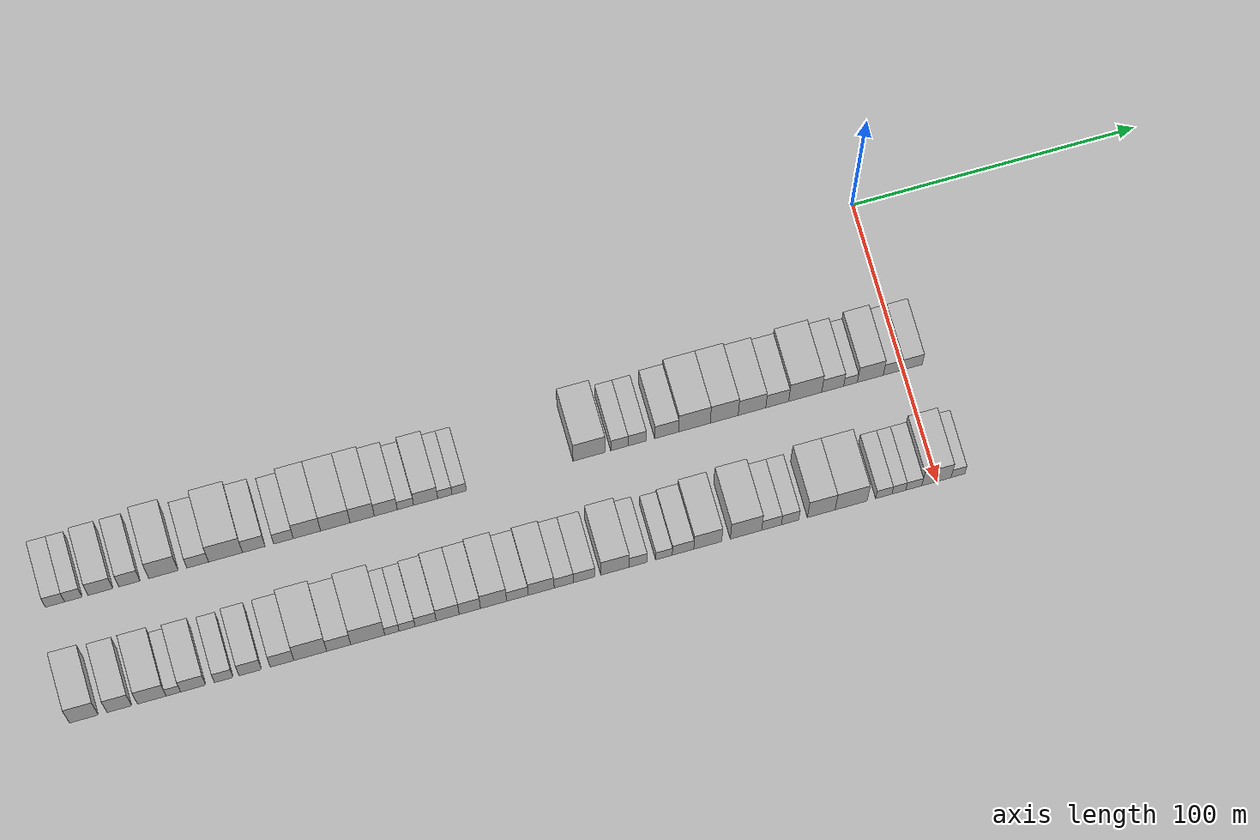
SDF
<sdf version="1.6">
 <world name="default">
  <include><name>ground_plane_1</name><uri>model://HANNAS_ground_plane</uri></include>
  <include>
   <name>ground_plane_2</name>
   <uri>model://HANNAS_ground_plane</uri>
   <pose>100 0 0  0 0 0</pose>
  </include>
  <model name="building_1">
   <static>1</static>
   <pose>50.0000 -294.6984 0 0.000000 0.000000 0.000000</pose>
   <link name="link">
    <pose>0 0 7.50 0 0 0</pose>
    <collision name="collision"><geometry><box><size>20.0000 6.6032 15.0000</size></box></geometry></collision>
    <visual name="visual">
     <cast_shadows>0</cast_shadows>
     <geometry><box><size>20.0000 6.6032 15.0000</size></box></geometry>
     <material>
      <script>
       <uri>model://HANNAS_wall/materials/scripts</uri>
       <uri>model://HANNAS_wall/materials/textures</uri>
       <name>vrc/HANNAS_wall</name>
      </script>
     </material>
    </visual>
   </link>
  </model>
  <model name="building_2">
   <static>1</static>
   <pose>50.0000 -288.3703 0 0.000000 0.000000 0.000000</pose>
   <link name="link">
    <pose>0 0 7.50 0 0 0</pose>
    <collision name="collision"><geometry><box><size>20.0000 6.0530 15.0000</size></box></geometry></collision>
    <visual name="visual">
     <cast_shadows>0</cast_shadows>
     <geometry><box><size>20.0000 6.0530 15.0000</size></box></geometry>
     <material>
      <script>
       <uri>model://HANNAS_wall/materials/scripts</uri>
       <uri>model://HANNAS_wall/materials/textures</uri>
       <name>vrc/HANNAS_wall</name>
      </script>
     </material>
    </visual>
   </link>
  </model>
  <model name="building_3">
   <static>1</static>
   <pose>50.0000 -279.0492 0 0.000000 0.000000 0.000000</pose>
   <link name="link">
    <pose>0 0 9.00 0 0 0</pose>
    <collision name="collision"><geometry><box><size>20.0000 8.5891 18.0000</size></box></geometry></collision>
    <visual name="visual">
     <cast_shadows>0</cast_shadows>
     <geometry><box><size>20.0000 8.5891 18.0000</size></box></geometry>
     <material>
      <script>
       <uri>model://HANNAS_wall/materials/scripts</uri>
       <uri>model://HANNAS_wall/materials/textures</uri>
       <name>vrc/HANNAS_wall</name>
      </script>
     </material>
    </visual>
   </link>
  </model>
  <model name="building_4">
   <static>1</static>
   <pose>50.0000 -269.0893 0 0.000000 0.000000 0.000000</pose>
   <link name="link">
    <pose>0 0 9.00 0 0 0</pose>
    <collision name="collision"><geometry><box><size>20.0000 7.3307 18.0000</size></box></geometry></collision>
    <visual name="visual">
     <cast_shadows>0</cast_shadows>
     <geometry><box><size>20.0000 7.3307 18.0000</size></box></geometry>
     <material>
      <script>
       <uri>model://HANNAS_wall/materials/scripts</uri>
       <uri>model://HANNAS_wall/materials/textures</uri>
       <name>vrc/HANNAS_wall</name>
      </script>
     </material>
    </visual>
   </link>
  </model>
  <model name="building_5">
   <static>1</static>
   <pose>50.0000 -257.3650 0 0.000000 0.000000 0.000000</pose>
   <link name="link">
    <pose>0 0 12.00 0 0 0</pose>
    <collision name="collision"><geometry><box><size>20.0000 10.1179 24.0000</size></box></geometry></collision>
    <visual name="visual">
     <cast_shadows>0</cast_shadows>
     <geometry><box><size>20.0000 10.1179 24.0000</size></box></geometry>
     <material>
      <script>
       <uri>model://HANNAS_wall/materials/scripts</uri>
       <uri>model://HANNAS_wall/materials/textures</uri>
       <name>vrc/HANNAS_wall</name>
      </script>
     </material>
    </visual>
   </link>
  </model>
  <model name="building_6">
   <static>1</static>
   <pose>50.0000 -245.5570 0 0.000000 0.000000 0.000000</pose>
   <link name="link">
    <pose>0 0 7.50 0 0 0</pose>
    <collision name="collision"><geometry><box><size>20.0000 7.4982 15.0000</size></box></geometry></collision>
    <visual name="visual">
     <cast_shadows>0</cast_shadows>
     <geometry><box><size>20.0000 7.4982 15.0000</size></box></geometry>
     <material>
      <script>
       <uri>model://HANNAS_wall/materials/scripts</uri>
       <uri>model://HANNAS_wall/materials/textures</uri>
       <name>vrc/HANNAS_wall</name>
      </script>
     </material>
    </visual>
   </link>
  </model>
  <model name="building_7">
   <static>1</static>
   <pose>50.0000 -235.9556 0 0.000000 0.000000 0.000000</pose>
   <link name="link">
    <pose>0 0 12.00 0 0 0</pose>
    <collision name="collision"><geometry><box><size>20.0000 11.7046 24.0000</size></box></geometry></collision>
    <visual name="visual">
     <cast_shadows>0</cast_shadows>
     <geometry><box><size>20.0000 11.7046 24.0000</size></box></geometry>
     <material>
      <script>
       <uri>model://HANNAS_wall/materials/scripts</uri>
       <uri>model://HANNAS_wall/materials/textures</uri>
       <name>vrc/HANNAS_wall</name>
      </script>
     </material>
    </visual>
   </link>
  </model>
  <model name="building_8">
   <static>1</static>
   <pose>50.0000 -226.2014 0 0.000000 0.000000 0.000000</pose>
   <link name="link">
    <pose>0 0 9.00 0 0 0</pose>
    <collision name="collision"><geometry><box><size>20.0000 7.8038 18.0000</size></box></geometry></collision>
    <visual name="visual">
     <cast_shadows>0</cast_shadows>
     <geometry><box><size>20.0000 7.8038 18.0000</size></box></geometry>
     <material>
      <script>
       <uri>model://HANNAS_wall/materials/scripts</uri>
       <uri>model://HANNAS_wall/materials/textures</uri>
       <name>vrc/HANNAS_wall</name>
      </script>
     </material>
    </visual>
   </link>
  </model>
  <model name="building_9">
   <static>1</static>
   <pose>50.0000 -215.9153 0 0.000000 0.000000 0.000000</pose>
   <link name="link">
    <pose>0 0 7.50 0 0 0</pose>
    <collision name="collision"><geometry><box><size>20.0000 6.7684 15.0000</size></box></geometry></collision>
    <visual name="visual">
     <cast_shadows>0</cast_shadows>
     <geometry><box><size>20.0000 6.7684 15.0000</size></box></geometry>
     <material>
      <script>
       <uri>model://HANNAS_wall/materials/scripts</uri>
       <uri>model://HANNAS_wall/materials/textures</uri>
       <name>vrc/HANNAS_wall</name>
      </script>
     </material>
    </visual>
   </link>
  </model>
  <model name="building_10">
   <static>1</static>
   <pose>50.0000 -207.8141 0 0.000000 0.000000 0.000000</pose>
   <link name="link">
    <pose>0 0 10.50 0 0 0</pose>
    <collision name="collision"><geometry><box><size>20.0000 9.4342 21.0000</size></box></geometry></collision>
    <visual name="visual">
     <cast_shadows>0</cast_shadows>
     <geometry><box><size>20.0000 9.4342 21.0000</size></box></geometry>
     <material>
      <script>
       <uri>model://HANNAS_wall/materials/scripts</uri>
       <uri>model://HANNAS_wall/materials/textures</uri>
       <name>vrc/HANNAS_wall</name>
      </script>
     </material>
    </visual>
   </link>
  </model>
  <model name="building_11">
   <static>1</static>
   <pose>50.0000 -197.9994 0 0.000000 0.000000 0.000000</pose>
   <link name="link">
    <pose>0 0 10.50 0 0 0</pose>
    <collision name="collision"><geometry><box><size>20.0000 10.1951 21.0000</size></box></geometry></collision>
    <visual name="visual">
     <cast_shadows>0</cast_shadows>
     <geometry><box><size>20.0000 10.1951 21.0000</size></box></geometry>
     <material>
      <script>
       <uri>model://HANNAS_wall/materials/scripts</uri>
       <uri>model://HANNAS_wall/materials/textures</uri>
       <name>vrc/HANNAS_wall</name>
      </script>
     </material>
    </visual>
   </link>
  </model>
  <model name="building_12">
   <static>1</static>
   <pose>50.0000 -188.6999 0 0.000000 0.000000 0.000000</pose>
   <link name="link">
    <pose>0 0 10.50 0 0 0</pose>
    <collision name="collision"><geometry><box><size>20.0000 8.4037 21.0000</size></box></geometry></collision>
    <visual name="visual">
     <cast_shadows>0</cast_shadows>
     <geometry><box><size>20.0000 8.4037 21.0000</size></box></geometry>
     <material>
      <script>
       <uri>model://HANNAS_wall/materials/scripts</uri>
       <uri>model://HANNAS_wall/materials/textures</uri>
       <name>vrc/HANNAS_wall</name>
      </script>
     </material>
    </visual>
   </link>
  </model>
  <model name="building_13">
   <static>1</static>
   <pose>50.0000 -180.5079 0 0.000000 0.000000 0.000000</pose>
   <link name="link">
    <pose>0 0 9.00 0 0 0</pose>
    <collision name="collision"><geometry><box><size>20.0000 7.9804 18.0000</size></box></geometry></collision>
    <visual name="visual">
     <cast_shadows>0</cast_shadows>
     <geometry><box><size>20.0000 7.9804 18.0000</size></box></geometry>
     <material>
      <script>
       <uri>model://HANNAS_wall/materials/scripts</uri>
       <uri>model://HANNAS_wall/materials/textures</uri>
       <name>vrc/HANNAS_wall</name>
      </script>
     </material>
    </visual>
   </link>
  </model>
  <model name="building_14">
   <static>1</static>
   <pose>50.0000 -173.7008 0 0.000000 0.000000 0.000000</pose>
   <link name="link">
    <pose>0 0 6.00 0 0 0</pose>
    <collision name="collision"><geometry><box><size>20.0000 5.6337 12.0000</size></box></geometry></collision>
    <visual name="visual">
     <cast_shadows>0</cast_shadows>
     <geometry><box><size>20.0000 5.6337 12.0000</size></box></geometry>
     <material>
      <script>
       <uri>model://HANNAS_wall/materials/scripts</uri>
       <uri>model://HANNAS_wall/materials/textures</uri>
       <name>vrc/HANNAS_wall</name>
      </script>
     </material>
    </visual>
   </link>
  </model>
  <model name="building_15">
   <static>1</static>
   <pose>50.0000 -166.6920 0 0.000000 0.000000 0.000000</pose>
   <link name="link">
    <pose>0 0 9.00 0 0 0</pose>
    <collision name="collision"><geometry><box><size>20.0000 8.3840 18.0000</size></box></geometry></collision>
    <visual name="visual">
     <cast_shadows>0</cast_shadows>
     <geometry><box><size>20.0000 8.3840 18.0000</size></box></geometry>
     <material>
      <script>
       <uri>model://HANNAS_wall/materials/scripts</uri>
       <uri>model://HANNAS_wall/materials/textures</uri>
       <name>vrc/HANNAS_wall</name>
      </script>
     </material>
    </visual>
   </link>
  </model>
  <model name="building_16">
   <static>1</static>
   <pose>50.0000 -160.0304 0 0.000000 0.000000 0.000000</pose>
   <link name="link">
    <pose>0 0 6.00 0 0 0</pose>
    <collision name="collision"><geometry><box><size>20.0000 4.9392 12.0000</size></box></geometry></collision>
    <visual name="visual">
     <cast_shadows>0</cast_shadows>
     <geometry><box><size>20.0000 4.9392 12.0000</size></box></geometry>
     <material>
      <script>
       <uri>model://HANNAS_wall/materials/scripts</uri>
       <uri>model://HANNAS_wall/materials/textures</uri>
       <name>vrc/HANNAS_wall</name>
      </script>
     </material>
    </visual>
   </link>
  </model>
  <model name="building_17">
   <static>1</static>
   <pose>50.0000 -155.0793 0 0.000000 0.000000 0.000000</pose>
   <link name="link">
    <pose>0 0 6.00 0 0 0</pose>
    <collision name="collision"><geometry><box><size>20.0000 4.9629 12.0000</size></box></geometry></collision>
    <visual name="visual">
     <cast_shadows>0</cast_shadows>
     <geometry><box><size>20.0000 4.9629 12.0000</size></box></geometry>
     <material>
      <script>
       <uri>model://HANNAS_wall/materials/scripts</uri>
       <uri>model://HANNAS_wall/materials/textures</uri>
       <name>vrc/HANNAS_wall</name>
      </script>
     </material>
    </visual>
   </link>
  </model>
  <model name="building_18">
   <static>1</static>
   <pose>50.0000 -109.8939 0 0.000000 0.000000 0.000000</pose>
   <link name="link">
    <pose>0 0 12.00 0 0 0</pose>
    <collision name="collision"><geometry><box><size>20.0000 11.1360 24.0000</size></box></geometry></collision>
    <visual name="visual">
     <cast_shadows>0</cast_shadows>
     <geometry><box><size>20.0000 11.1360 24.0000</size></box></geometry>
     <material>
      <script>
       <uri>model://HANNAS_wall/materials/scripts</uri>
       <uri>model://HANNAS_wall/materials/textures</uri>
       <name>vrc/HANNAS_wall</name>
      </script>
     </material>
    </visual>
   </link>
  </model>
  <model name="building_19">
   <static>1</static>
   <pose>50.0000 -99.2927 0 0.000000 0.000000 0.000000</pose>
   <link name="link">
    <pose>0 0 7.50 0 0 0</pose>
    <collision name="collision"><geometry><box><size>20.0000 6.0665 15.0000</size></box></geometry></collision>
    <visual name="visual">
     <cast_shadows>0</cast_shadows>
     <geometry><box><size>20.0000 6.0665 15.0000</size></box></geometry>
     <material>
      <script>
       <uri>model://HANNAS_wall/materials/scripts</uri>
       <uri>model://HANNAS_wall/materials/textures</uri>
       <name>vrc/HANNAS_wall</name>
      </script>
     </material>
    </visual>
   </link>
  </model>
  <model name="building_20">
   <static>1</static>
   <pose>50.0000 -93.1286 0 0.000000 0.000000 0.000000</pose>
   <link name="link">
    <pose>0 0 7.50 0 0 0</pose>
    <collision name="collision"><geometry><box><size>20.0000 6.2618 15.0000</size></box></geometry></collision>
    <visual name="visual">
     <cast_shadows>0</cast_shadows>
     <geometry><box><size>20.0000 6.2618 15.0000</size></box></geometry>
     <material>
      <script>
       <uri>model://HANNAS_wall/materials/scripts</uri>
       <uri>model://HANNAS_wall/materials/textures</uri>
       <name>vrc/HANNAS_wall</name>
      </script>
     </material>
    </visual>
   </link>
  </model>
  <model name="building_21">
   <static>1</static>
   <pose>50.0000 -82.8432 0 0.000000 0.000000 0.000000</pose>
   <link name="link">
    <pose>0 0 9.00 0 0 0</pose>
    <collision name="collision"><geometry><box><size>20.0000 8.3088 18.0000</size></box></geometry></collision>
    <visual name="visual">
     <cast_shadows>0</cast_shadows>
     <geometry><box><size>20.0000 8.3088 18.0000</size></box></geometry>
     <material>
      <script>
       <uri>model://HANNAS_wall/materials/scripts</uri>
       <uri>model://HANNAS_wall/materials/textures</uri>
       <name>vrc/HANNAS_wall</name>
      </script>
     </material>
    </visual>
   </link>
  </model>
  <model name="building_22">
   <static>1</static>
   <pose>50.0000 -73.1560 0 0.000000 0.000000 0.000000</pose>
   <link name="link">
    <pose>0 0 12.00 0 0 0</pose>
    <collision name="collision"><geometry><box><size>20.0000 11.0657 24.0000</size></box></geometry></collision>
    <visual name="visual">
     <cast_shadows>0</cast_shadows>
     <geometry><box><size>20.0000 11.0657 24.0000</size></box></geometry>
     <material>
      <script>
       <uri>model://HANNAS_wall/materials/scripts</uri>
       <uri>model://HANNAS_wall/materials/textures</uri>
       <name>vrc/HANNAS_wall</name>
      </script>
     </material>
    </visual>
   </link>
  </model>
  <model name="building_23">
   <static>1</static>
   <pose>50.0000 -62.7420 0 0.000000 0.000000 0.000000</pose>
   <link name="link">
    <pose>0 0 12.00 0 0 0</pose>
    <collision name="collision"><geometry><box><size>20.0000 9.7621 24.0000</size></box></geometry></collision>
    <visual name="visual">
     <cast_shadows>0</cast_shadows>
     <geometry><box><size>20.0000 9.7621 24.0000</size></box></geometry>
     <material>
      <script>
       <uri>model://HANNAS_wall/materials/scripts</uri>
       <uri>model://HANNAS_wall/materials/textures</uri>
       <name>vrc/HANNAS_wall</name>
      </script>
     </material>
    </visual>
   </link>
  </model>
  <model name="building_24">
   <static>1</static>
   <pose>50.0000 -53.0204 0 0.000000 0.000000 0.000000</pose>
   <link name="link">
    <pose>0 0 10.50 0 0 0</pose>
    <collision name="collision"><geometry><box><size>20.0000 9.6811 21.0000</size></box></geometry></collision>
    <visual name="visual">
     <cast_shadows>0</cast_shadows>
     <geometry><box><size>20.0000 9.6811 21.0000</size></box></geometry>
     <material>
      <script>
       <uri>model://HANNAS_wall/materials/scripts</uri>
       <uri>model://HANNAS_wall/materials/textures</uri>
       <name>vrc/HANNAS_wall</name>
      </script>
     </material>
    </visual>
   </link>
  </model>
  <model name="building_25">
   <static>1</static>
   <pose>50.0000 -44.1739 0 0.000000 0.000000 0.000000</pose>
   <link name="link">
    <pose>0 0 9.00 0 0 0</pose>
    <collision name="collision"><geometry><box><size>20.0000 8.0121 18.0000</size></box></geometry></collision>
    <visual name="visual">
     <cast_shadows>0</cast_shadows>
     <geometry><box><size>20.0000 8.0121 18.0000</size></box></geometry>
     <material>
      <script>
       <uri>model://HANNAS_wall/materials/scripts</uri>
       <uri>model://HANNAS_wall/materials/textures</uri>
       <name>vrc/HANNAS_wall</name>
      </script>
     </material>
    </visual>
   </link>
  </model>
  <model name="building_26">
   <static>1</static>
   <pose>50.0000 -34.3919 0 0.000000 0.000000 0.000000</pose>
   <link name="link">
    <pose>0 0 12.00 0 0 0</pose>
    <collision name="collision"><geometry><box><size>20.0000 11.5519 24.0000</size></box></geometry></collision>
    <visual name="visual">
     <cast_shadows>0</cast_shadows>
     <geometry><box><size>20.0000 11.5519 24.0000</size></box></geometry>
     <material>
      <script>
       <uri>model://HANNAS_wall/materials/scripts</uri>
       <uri>model://HANNAS_wall/materials/textures</uri>
       <name>vrc/HANNAS_wall</name>
      </script>
     </material>
    </visual>
   </link>
  </model>
  <model name="building_27">
   <static>1</static>
   <pose>50.0000 -24.7512 0 0.000000 0.000000 0.000000</pose>
   <link name="link">
    <pose>0 0 9.00 0 0 0</pose>
    <collision name="collision"><geometry><box><size>20.0000 7.7294 18.0000</size></box></geometry></collision>
    <visual name="visual">
     <cast_shadows>0</cast_shadows>
     <geometry><box><size>20.0000 7.7294 18.0000</size></box></geometry>
     <material>
      <script>
       <uri>model://HANNAS_wall/materials/scripts</uri>
       <uri>model://HANNAS_wall/materials/textures</uri>
       <name>vrc/HANNAS_wall</name>
      </script>
     </material>
    </visual>
   </link>
  </model>
  <model name="building_28">
   <static>1</static>
   <pose>50.0000 -18.4788 0 0.000000 0.000000 0.000000</pose>
   <link name="link">
    <pose>0 0 6.00 0 0 0</pose>
    <collision name="collision"><geometry><box><size>20.0000 4.8155 12.0000</size></box></geometry></collision>
    <visual name="visual">
     <cast_shadows>0</cast_shadows>
     <geometry><box><size>20.0000 4.8155 12.0000</size></box></geometry>
     <material>
      <script>
       <uri>model://HANNAS_wall/materials/scripts</uri>
       <uri>model://HANNAS_wall/materials/textures</uri>
       <name>vrc/HANNAS_wall</name>
      </script>
     </material>
    </visual>
   </link>
  </model>
  <model name="building_29">
   <static>1</static>
   <pose>50.0000 -11.5415 0 0.000000 0.000000 0.000000</pose>
   <link name="link">
    <pose>0 0 10.50 0 0 0</pose>
    <collision name="collision"><geometry><box><size>20.0000 9.0590 21.0000</size></box></geometry></collision>
    <visual name="visual">
     <cast_shadows>0</cast_shadows>
     <geometry><box><size>20.0000 9.0590 21.0000</size></box></geometry>
     <material>
      <script>
       <uri>model://HANNAS_wall/materials/scripts</uri>
       <uri>model://HANNAS_wall/materials/textures</uri>
       <name>vrc/HANNAS_wall</name>
      </script>
     </material>
    </visual>
   </link>
  </model>
  <model name="building_30">
   <static>1</static>
   <pose>50.0000 -3.7918 0 0.000000 0.000000 0.000000</pose>
   <link name="link">
    <pose>0 0 7.50 0 0 0</pose>
    <collision name="collision"><geometry><box><size>20.0000 6.4405 15.0000</size></box></geometry></collision>
    <visual name="visual">
     <cast_shadows>0</cast_shadows>
     <geometry><box><size>20.0000 6.4405 15.0000</size></box></geometry>
     <material>
      <script>
       <uri>model://HANNAS_wall/materials/scripts</uri>
       <uri>model://HANNAS_wall/materials/textures</uri>
       <name>vrc/HANNAS_wall</name>
      </script>
     </material>
    </visual>
   </link>
  </model>
  <model name="building_31">
   <static>1</static>
   <pose>50.0000 3.0482 0 0.000000 0.000000 0.000000</pose>
   <link name="link">
    <pose>0 0 7.50 0 0 0</pose>
    <collision name="collision"><geometry><box><size>20.0000 7.2395 15.0000</size></box></geometry></collision>
    <visual name="visual">
     <cast_shadows>0</cast_shadows>
     <geometry><box><size>20.0000 7.2395 15.0000</size></box></geometry>
     <material>
      <script>
       <uri>model://HANNAS_wall/materials/scripts</uri>
       <uri>model://HANNAS_wall/materials/textures</uri>
       <name>vrc/HANNAS_wall</name>
      </script>
     </material>
    </visual>
   </link>
  </model>
  <model name="building_66">
   <static>1</static>
   <pose>90.0000 -295.0771 0 0.000000 0.000000 0.000000</pose>
   <link name="link">
    <pose>0 0 12.00 0 0 0</pose>
    <collision name="collision"><geometry><box><size>20.0000 9.8458 24.0000</size></box></geometry></collision>
    <visual name="visual">
     <cast_shadows>0</cast_shadows>
     <geometry><box><size>20.0000 9.8458 24.0000</size></box></geometry>
     <material>
      <script>
       <uri>model://HANNAS_wall/materials/scripts</uri>
       <uri>model://HANNAS_wall/materials/textures</uri>
       <name>vrc/HANNAS_wall</name>
      </script>
     </material>
    </visual>
   </link>
  </model>
  <model name="building_67">
   <static>1</static>
   <pose>90.0000 -282.9489 0 0.000000 0.000000 0.000000</pose>
   <link name="link">
    <pose>0 0 10.50 0 0 0</pose>
    <collision name="collision"><geometry><box><size>20.0000 8.4106 21.0000</size></box></geometry></collision>
    <visual name="visual">
     <cast_shadows>0</cast_shadows>
     <geometry><box><size>20.0000 8.4106 21.0000</size></box></geometry>
     <material>
      <script>
       <uri>model://HANNAS_wall/materials/scripts</uri>
       <uri>model://HANNAS_wall/materials/textures</uri>
       <name>vrc/HANNAS_wall</name>
      </script>
     </material>
    </visual>
   </link>
  </model>
  <model name="building_68">
   <static>1</static>
   <pose>90.0000 -271.8184 0 0.000000 0.000000 0.000000</pose>
   <link name="link">
    <pose>0 0 10.50 0 0 0</pose>
    <collision name="collision"><geometry><box><size>20.0000 9.8504 21.0000</size></box></geometry></collision>
    <visual name="visual">
     <cast_shadows>0</cast_shadows>
     <geometry><box><size>20.0000 9.8504 21.0000</size></box></geometry>
     <material>
      <script>
       <uri>model://HANNAS_wall/materials/scripts</uri>
       <uri>model://HANNAS_wall/materials/textures</uri>
       <name>vrc/HANNAS_wall</name>
      </script>
     </material>
    </visual>
   </link>
  </model>
  <model name="building_69">
   <static>1</static>
   <pose>90.0000 -264.4245 0 0.000000 0.000000 0.000000</pose>
   <link name="link">
    <pose>0 0 6.00 0 0 0</pose>
    <collision name="collision"><geometry><box><size>20.0000 4.9375 12.0000</size></box></geometry></collision>
    <visual name="visual">
     <cast_shadows>0</cast_shadows>
     <geometry><box><size>20.0000 4.9375 12.0000</size></box></geometry>
     <material>
      <script>
       <uri>model://HANNAS_wall/materials/scripts</uri>
       <uri>model://HANNAS_wall/materials/textures</uri>
       <name>vrc/HANNAS_wall</name>
      </script>
     </material>
    </visual>
   </link>
  </model>
  <model name="building_70">
   <static>1</static>
   <pose>90.0000 -257.6493 0 0.000000 0.000000 0.000000</pose>
   <link name="link">
    <pose>0 0 9.00 0 0 0</pose>
    <collision name="collision"><geometry><box><size>20.0000 8.6128 18.0000</size></box></geometry></collision>
    <visual name="visual">
     <cast_shadows>0</cast_shadows>
     <geometry><box><size>20.0000 8.6128 18.0000</size></box></geometry>
     <material>
      <script>
       <uri>model://HANNAS_wall/materials/scripts</uri>
       <uri>model://HANNAS_wall/materials/textures</uri>
       <name>vrc/HANNAS_wall</name>
      </script>
     </material>
    </visual>
   </link>
  </model>
  <model name="building_71">
   <static>1</static>
   <pose>90.0000 -247.1283 0 0.000000 0.000000 0.000000</pose>
   <link name="link">
    <pose>0 0 7.50 0 0 0</pose>
    <collision name="collision"><geometry><box><size>20.0000 6.4294 15.0000</size></box></geometry></collision>
    <visual name="visual">
     <cast_shadows>0</cast_shadows>
     <geometry><box><size>20.0000 6.4294 15.0000</size></box></geometry>
     <material>
      <script>
       <uri>model://HANNAS_wall/materials/scripts</uri>
       <uri>model://HANNAS_wall/materials/textures</uri>
       <name>vrc/HANNAS_wall</name>
      </script>
     </material>
    </visual>
   </link>
  </model>
  <model name="building_72">
   <static>1</static>
   <pose>90.0000 -238.0464 0 0.000000 0.000000 0.000000</pose>
   <link name="link">
    <pose>0 0 9.00 0 0 0</pose>
    <collision name="collision"><geometry><box><size>20.0000 7.7344 18.0000</size></box></geometry></collision>
    <visual name="visual">
     <cast_shadows>0</cast_shadows>
     <geometry><box><size>20.0000 7.7344 18.0000</size></box></geometry>
     <material>
      <script>
       <uri>model://HANNAS_wall/materials/scripts</uri>
       <uri>model://HANNAS_wall/materials/textures</uri>
       <name>vrc/HANNAS_wall</name>
      </script>
     </material>
    </visual>
   </link>
  </model>
  <model name="building_73">
   <static>1</static>
   <pose>90.0000 -227.1163 0 0.000000 0.000000 0.000000</pose>
   <link name="link">
    <pose>0 0 9.00 0 0 0</pose>
    <collision name="collision"><geometry><box><size>20.0000 8.1259 18.0000</size></box></geometry></collision>
    <visual name="visual">
     <cast_shadows>0</cast_shadows>
     <geometry><box><size>20.0000 8.1259 18.0000</size></box></geometry>
     <material>
      <script>
       <uri>model://HANNAS_wall/materials/scripts</uri>
       <uri>model://HANNAS_wall/materials/textures</uri>
       <name>vrc/HANNAS_wall</name>
      </script>
     </material>
    </visual>
   </link>
  </model>
  <model name="building_74">
   <static>1</static>
   <pose>90.0000 -217.4176 0 0.000000 0.000000 0.000000</pose>
   <link name="link">
    <pose>0 0 12.00 0 0 0</pose>
    <collision name="collision"><geometry><box><size>20.0000 11.2715 24.0000</size></box></geometry></collision>
    <visual name="visual">
     <cast_shadows>0</cast_shadows>
     <geometry><box><size>20.0000 11.2715 24.0000</size></box></geometry>
     <material>
      <script>
       <uri>model://HANNAS_wall/materials/scripts</uri>
       <uri>model://HANNAS_wall/materials/textures</uri>
       <name>vrc/HANNAS_wall</name>
      </script>
     </material>
    </visual>
   </link>
  </model>
  <model name="building_75">
   <static>1</static>
   <pose>90.0000 -207.6457 0 0.000000 0.000000 0.000000</pose>
   <link name="link">
    <pose>0 0 9.00 0 0 0</pose>
    <collision name="collision"><geometry><box><size>20.0000 8.2724 18.0000</size></box></geometry></collision>
    <visual name="visual">
     <cast_shadows>0</cast_shadows>
     <geometry><box><size>20.0000 8.2724 18.0000</size></box></geometry>
     <material>
      <script>
       <uri>model://HANNAS_wall/materials/scripts</uri>
       <uri>model://HANNAS_wall/materials/textures</uri>
       <name>vrc/HANNAS_wall</name>
      </script>
     </material>
    </visual>
   </link>
  </model>
  <model name="building_76">
   <static>1</static>
   <pose>90.0000 -197.6526 0 0.000000 0.000000 0.000000</pose>
   <link name="link">
    <pose>0 0 12.00 0 0 0</pose>
    <collision name="collision"><geometry><box><size>20.0000 11.7136 24.0000</size></box></geometry></collision>
    <visual name="visual">
     <cast_shadows>0</cast_shadows>
     <geometry><box><size>20.0000 11.7136 24.0000</size></box></geometry>
     <material>
      <script>
       <uri>model://HANNAS_wall/materials/scripts</uri>
       <uri>model://HANNAS_wall/materials/textures</uri>
       <name>vrc/HANNAS_wall</name>
      </script>
     </material>
    </visual>
   </link>
  </model>
  <model name="building_77">
   <static>1</static>
   <pose>90.0000 -189.3243 0 0.000000 0.000000 0.000000</pose>
   <link name="link">
    <pose>0 0 6.00 0 0 0</pose>
    <collision name="collision"><geometry><box><size>20.0000 4.9431 12.0000</size></box></geometry></collision>
    <visual name="visual">
     <cast_shadows>0</cast_shadows>
     <geometry><box><size>20.0000 4.9431 12.0000</size></box></geometry>
     <material>
      <script>
       <uri>model://HANNAS_wall/materials/scripts</uri>
       <uri>model://HANNAS_wall/materials/textures</uri>
       <name>vrc/HANNAS_wall</name>
      </script>
     </material>
    </visual>
   </link>
  </model>
  <model name="building_78">
   <static>1</static>
   <pose>90.0000 -184.0907 0 0.000000 0.000000 0.000000</pose>
   <link name="link">
    <pose>0 0 6.00 0 0 0</pose>
    <collision name="collision"><geometry><box><size>20.0000 5.5240 12.0000</size></box></geometry></collision>
    <visual name="visual">
     <cast_shadows>0</cast_shadows>
     <geometry><box><size>20.0000 5.5240 12.0000</size></box></geometry>
     <material>
      <script>
       <uri>model://HANNAS_wall/materials/scripts</uri>
       <uri>model://HANNAS_wall/materials/textures</uri>
       <name>vrc/HANNAS_wall</name>
      </script>
     </material>
    </visual>
   </link>
  </model>
  <model name="building_79">
   <static>1</static>
   <pose>90.0000 -177.6889 0 0.000000 0.000000 0.000000</pose>
   <link name="link">
    <pose>0 0 7.50 0 0 0</pose>
    <collision name="collision"><geometry><box><size>20.0000 7.2796 15.0000</size></box></geometry></collision>
    <visual name="visual">
     <cast_shadows>0</cast_shadows>
     <geometry><box><size>20.0000 7.2796 15.0000</size></box></geometry>
     <material>
      <script>
       <uri>model://HANNAS_wall/materials/scripts</uri>
       <uri>model://HANNAS_wall/materials/textures</uri>
       <name>vrc/HANNAS_wall</name>
      </script>
     </material>
    </visual>
   </link>
  </model>
  <model name="building_80">
   <static>1</static>
   <pose>90.0000 -170.0706 0 0.000000 0.000000 0.000000</pose>
   <link name="link">
    <pose>0 0 9.00 0 0 0</pose>
    <collision name="collision"><geometry><box><size>20.0000 7.9569 18.0000</size></box></geometry></collision>
    <visual name="visual">
     <cast_shadows>0</cast_shadows>
     <geometry><box><size>20.0000 7.9569 18.0000</size></box></geometry>
     <material>
      <script>
       <uri>model://HANNAS_wall/materials/scripts</uri>
       <uri>model://HANNAS_wall/materials/textures</uri>
       <name>vrc/HANNAS_wall</name>
      </script>
     </material>
    </visual>
   </link>
  </model>
  <model name="building_81">
   <static>1</static>
   <pose>90.0000 -162.4252 0 0.000000 0.000000 0.000000</pose>
   <link name="link">
    <pose>0 0 9.00 0 0 0</pose>
    <collision name="collision"><geometry><box><size>20.0000 7.3340 18.0000</size></box></geometry></collision>
    <visual name="visual">
     <cast_shadows>0</cast_shadows>
     <geometry><box><size>20.0000 7.3340 18.0000</size></box></geometry>
     <material>
      <script>
       <uri>model://HANNAS_wall/materials/scripts</uri>
       <uri>model://HANNAS_wall/materials/textures</uri>
       <name>vrc/HANNAS_wall</name>
      </script>
     </material>
    </visual>
   </link>
  </model>
  <model name="building_82">
   <static>1</static>
   <pose>90.0000 -154.2460 0 0.000000 0.000000 0.000000</pose>
   <link name="link">
    <pose>0 0 10.50 0 0 0</pose>
    <collision name="collision"><geometry><box><size>20.0000 9.0242 21.0000</size></box></geometry></collision>
    <visual name="visual">
     <cast_shadows>0</cast_shadows>
     <geometry><box><size>20.0000 9.0242 21.0000</size></box></geometry>
     <material>
      <script>
       <uri>model://HANNAS_wall/materials/scripts</uri>
       <uri>model://HANNAS_wall/materials/textures</uri>
       <name>vrc/HANNAS_wall</name>
      </script>
     </material>
    </visual>
   </link>
  </model>
  <model name="building_83">
   <static>1</static>
   <pose>90.0000 -145.9849 0 0.000000 0.000000 0.000000</pose>
   <link name="link">
    <pose>0 0 7.50 0 0 0</pose>
    <collision name="collision"><geometry><box><size>20.0000 7.4980 15.0000</size></box></geometry></collision>
    <visual name="visual">
     <cast_shadows>0</cast_shadows>
     <geometry><box><size>20.0000 7.4980 15.0000</size></box></geometry>
     <material>
      <script>
       <uri>model://HANNAS_wall/materials/scripts</uri>
       <uri>model://HANNAS_wall/materials/textures</uri>
       <name>vrc/HANNAS_wall</name>
      </script>
     </material>
    </visual>
   </link>
  </model>
  <model name="building_84">
   <static>1</static>
   <pose>90.0000 -137.7460 0 0.000000 0.000000 0.000000</pose>
   <link name="link">
    <pose>0 0 9.00 0 0 0</pose>
    <collision name="collision"><geometry><box><size>20.0000 8.9799 18.0000</size></box></geometry></collision>
    <visual name="visual">
     <cast_shadows>0</cast_shadows>
     <geometry><box><size>20.0000 8.9799 18.0000</size></box></geometry>
     <material>
      <script>
       <uri>model://HANNAS_wall/materials/scripts</uri>
       <uri>model://HANNAS_wall/materials/textures</uri>
       <name>vrc/HANNAS_wall</name>
      </script>
     </material>
    </visual>
   </link>
  </model>
  <model name="building_85">
   <static>1</static>
   <pose>90.0000 -129.9072 0 0.000000 0.000000 0.000000</pose>
   <link name="link">
    <pose>0 0 7.50 0 0 0</pose>
    <collision name="collision"><geometry><box><size>20.0000 6.6978 15.0000</size></box></geometry></collision>
    <visual name="visual">
     <cast_shadows>0</cast_shadows>
     <geometry><box><size>20.0000 6.6978 15.0000</size></box></geometry>
     <material>
      <script>
       <uri>model://HANNAS_wall/materials/scripts</uri>
       <uri>model://HANNAS_wall/materials/textures</uri>
       <name>vrc/HANNAS_wall</name>
      </script>
     </material>
    </visual>
   </link>
  </model>
  <model name="building_86">
   <static>1</static>
   <pose>90.0000 -122.8420 0 0.000000 0.000000 0.000000</pose>
   <link name="link">
    <pose>0 0 7.50 0 0 0</pose>
    <collision name="collision"><geometry><box><size>20.0000 7.4326 15.0000</size></box></geometry></collision>
    <visual name="visual">
     <cast_shadows>0</cast_shadows>
     <geometry><box><size>20.0000 7.4326 15.0000</size></box></geometry>
     <material>
      <script>
       <uri>model://HANNAS_wall/materials/scripts</uri>
       <uri>model://HANNAS_wall/materials/textures</uri>
       <name>vrc/HANNAS_wall</name>
      </script>
     </material>
    </visual>
   </link>
  </model>
  <model name="building_87">
   <static>1</static>
   <pose>90.0000 -112.1810 0 0.000000 0.000000 0.000000</pose>
   <link name="link">
    <pose>0 0 10.50 0 0 0</pose>
    <collision name="collision"><geometry><box><size>20.0000 9.8894 21.0000</size></box></geometry></collision>
    <visual name="visual">
     <cast_shadows>0</cast_shadows>
     <geometry><box><size>20.0000 9.8894 21.0000</size></box></geometry>
     <material>
      <script>
       <uri>model://HANNAS_wall/materials/scripts</uri>
       <uri>model://HANNAS_wall/materials/textures</uri>
       <name>vrc/HANNAS_wall</name>
      </script>
     </material>
    </visual>
   </link>
  </model>
  <model name="building_88">
   <static>1</static>
   <pose>90.0000 -104.1610 0 0.000000 0.000000 0.000000</pose>
   <link name="link">
    <pose>0 0 7.50 0 0 0</pose>
    <collision name="collision"><geometry><box><size>20.0000 6.1506 15.0000</size></box></geometry></collision>
    <visual name="visual">
     <cast_shadows>0</cast_shadows>
     <geometry><box><size>20.0000 6.1506 15.0000</size></box></geometry>
     <material>
      <script>
       <uri>model://HANNAS_wall/materials/scripts</uri>
       <uri>model://HANNAS_wall/materials/textures</uri>
       <name>vrc/HANNAS_wall</name>
      </script>
     </material>
    </visual>
   </link>
  </model>
  <model name="building_89">
   <static>1</static>
   <pose>90.0000 -95.2055 0 0.000000 0.000000 0.000000</pose>
   <link name="link">
    <pose>0 0 6.00 0 0 0</pose>
    <collision name="collision"><geometry><box><size>20.0000 5.7605 12.0000</size></box></geometry></collision>
    <visual name="visual">
     <cast_shadows>0</cast_shadows>
     <geometry><box><size>20.0000 5.7605 12.0000</size></box></geometry>
     <material>
      <script>
       <uri>model://HANNAS_wall/materials/scripts</uri>
       <uri>model://HANNAS_wall/materials/textures</uri>
       <name>vrc/HANNAS_wall</name>
      </script>
     </material>
    </visual>
   </link>
  </model>
  <model name="building_90">
   <static>1</static>
   <pose>90.0000 -88.5963 0 0.000000 0.000000 0.000000</pose>
   <link name="link">
    <pose>0 0 7.50 0 0 0</pose>
    <collision name="collision"><geometry><box><size>20.0000 7.4580 15.0000</size></box></geometry></collision>
    <visual name="visual">
     <cast_shadows>0</cast_shadows>
     <geometry><box><size>20.0000 7.4580 15.0000</size></box></geometry>
     <material>
      <script>
       <uri>model://HANNAS_wall/materials/scripts</uri>
       <uri>model://HANNAS_wall/materials/textures</uri>
       <name>vrc/HANNAS_wall</name>
      </script>
     </material>
    </visual>
   </link>
  </model>
  <model name="building_91">
   <static>1</static>
   <pose>90.0000 -80.0150 0 0.000000 0.000000 0.000000</pose>
   <link name="link">
    <pose>0 0 10.50 0 0 0</pose>
    <collision name="collision"><geometry><box><size>20.0000 9.7045 21.0000</size></box></geometry></collision>
    <visual name="visual">
     <cast_shadows>0</cast_shadows>
     <geometry><box><size>20.0000 9.7045 21.0000</size></box></geometry>
     <material>
      <script>
       <uri>model://HANNAS_wall/materials/scripts</uri>
       <uri>model://HANNAS_wall/materials/textures</uri>
       <name>vrc/HANNAS_wall</name>
      </script>
     </material>
    </visual>
   </link>
  </model>
  <model name="building_92">
   <static>1</static>
   <pose>90.0000 -66.7115 0 0.000000 0.000000 0.000000</pose>
   <link name="link">
    <pose>0 0 12.00 0 0 0</pose>
    <collision name="collision"><geometry><box><size>20.0000 10.9025 24.0000</size></box></geometry></collision>
    <visual name="visual">
     <cast_shadows>0</cast_shadows>
     <geometry><box><size>20.0000 10.9025 24.0000</size></box></geometry>
     <material>
      <script>
       <uri>model://HANNAS_wall/materials/scripts</uri>
       <uri>model://HANNAS_wall/materials/textures</uri>
       <name>vrc/HANNAS_wall</name>
      </script>
     </material>
    </visual>
   </link>
  </model>
  <model name="building_93">
   <static>1</static>
   <pose>90.0000 -57.8271 0 0.000000 0.000000 0.000000</pose>
   <link name="link">
    <pose>0 0 7.50 0 0 0</pose>
    <collision name="collision"><geometry><box><size>20.0000 6.8663 15.0000</size></box></geometry></collision>
    <visual name="visual">
     <cast_shadows>0</cast_shadows>
     <geometry><box><size>20.0000 6.8663 15.0000</size></box></geometry>
     <material>
      <script>
       <uri>model://HANNAS_wall/materials/scripts</uri>
       <uri>model://HANNAS_wall/materials/textures</uri>
       <name>vrc/HANNAS_wall</name>
      </script>
     </material>
    </visual>
   </link>
  </model>
  <model name="building_94">
   <static>1</static>
   <pose>90.0000 -51.3597 0 0.000000 0.000000 0.000000</pose>
   <link name="link">
    <pose>0 0 7.50 0 0 0</pose>
    <collision name="collision"><geometry><box><size>20.0000 6.0684 15.0000</size></box></geometry></collision>
    <visual name="visual">
     <cast_shadows>0</cast_shadows>
     <geometry><box><size>20.0000 6.0684 15.0000</size></box></geometry>
     <material>
      <script>
       <uri>model://HANNAS_wall/materials/scripts</uri>
       <uri>model://HANNAS_wall/materials/textures</uri>
       <name>vrc/HANNAS_wall</name>
      </script>
     </material>
    </visual>
   </link>
  </model>
  <model name="building_95">
   <static>1</static>
   <pose>90.0000 -40.4830 0 0.000000 0.000000 0.000000</pose>
   <link name="link">
    <pose>0 0 12.00 0 0 0</pose>
    <collision name="collision"><geometry><box><size>20.0000 9.6850 24.0000</size></box></geometry></collision>
    <visual name="visual">
     <cast_shadows>0</cast_shadows>
     <geometry><box><size>20.0000 9.6850 24.0000</size></box></geometry>
     <material>
      <script>
       <uri>model://HANNAS_wall/materials/scripts</uri>
       <uri>model://HANNAS_wall/materials/textures</uri>
       <name>vrc/HANNAS_wall</name>
      </script>
     </material>
    </visual>
   </link>
  </model>
  <model name="building_96">
   <static>1</static>
   <pose>90.0000 -30.0704 0 0.000000 0.000000 0.000000</pose>
   <link name="link">
    <pose>0 0 12.00 0 0 0</pose>
    <collision name="collision"><geometry><box><size>20.0000 11.1402 24.0000</size></box></geometry></collision>
    <visual name="visual">
     <cast_shadows>0</cast_shadows>
     <geometry><box><size>20.0000 11.1402 24.0000</size></box></geometry>
     <material>
      <script>
       <uri>model://HANNAS_wall/materials/scripts</uri>
       <uri>model://HANNAS_wall/materials/textures</uri>
       <name>vrc/HANNAS_wall</name>
      </script>
     </material>
    </visual>
   </link>
  </model>
  <model name="building_97">
   <static>1</static>
   <pose>90.0000 -18.6779 0 0.000000 0.000000 0.000000</pose>
   <link name="link">
    <pose>0 0 6.00 0 0 0</pose>
    <collision name="collision"><geometry><box><size>20.0000 5.6447 12.0000</size></box></geometry></collision>
    <visual name="visual">
     <cast_shadows>0</cast_shadows>
     <geometry><box><size>20.0000 5.6447 12.0000</size></box></geometry>
     <material>
      <script>
       <uri>model://HANNAS_wall/materials/scripts</uri>
       <uri>model://HANNAS_wall/materials/textures</uri>
       <name>vrc/HANNAS_wall</name>
      </script>
     </material>
    </visual>
   </link>
  </model>
  <model name="building_98">
   <static>1</static>
   <pose>90.0000 -13.4449 0 0.000000 0.000000 0.000000</pose>
   <link name="link">
    <pose>0 0 6.00 0 0 0</pose>
    <collision name="collision"><geometry><box><size>20.0000 4.8214 12.0000</size></box></geometry></collision>
    <visual name="visual">
     <cast_shadows>0</cast_shadows>
     <geometry><box><size>20.0000 4.8214 12.0000</size></box></geometry>
     <material>
      <script>
       <uri>model://HANNAS_wall/materials/scripts</uri>
       <uri>model://HANNAS_wall/materials/textures</uri>
       <name>vrc/HANNAS_wall</name>
      </script>
     </material>
    </visual>
   </link>
  </model>
  <model name="building_99">
   <static>1</static>
   <pose>90.0000 -8.2300 0 0.000000 0.000000 0.000000</pose>
   <link name="link">
    <pose>0 0 6.00 0 0 0</pose>
    <collision name="collision"><geometry><box><size>20.0000 5.6083 12.0000</size></box></geometry></collision>
    <visual name="visual">
     <cast_shadows>0</cast_shadows>
     <geometry><box><size>20.0000 5.6083 12.0000</size></box></geometry>
     <material>
      <script>
       <uri>model://HANNAS_wall/materials/scripts</uri>
       <uri>model://HANNAS_wall/materials/textures</uri>
       <name>vrc/HANNAS_wall</name>
      </script>
     </material>
    </visual>
   </link>
  </model>
  <model name="building_100">
   <static>1</static>
   <pose>90.0000 -0.3167 0 0.000000 0.000000 0.000000</pose>
   <link name="link">
    <pose>0 0 10.50 0 0 0</pose>
    <collision name="collision"><geometry><box><size>20.0000 10.2184 21.0000</size></box></geometry></collision>
    <visual name="visual">
     <cast_shadows>0</cast_shadows>
     <geometry><box><size>20.0000 10.2184 21.0000</size></box></geometry>
     <material>
      <script>
       <uri>model://HANNAS_wall/materials/scripts</uri>
       <uri>model://HANNAS_wall/materials/textures</uri>
       <name>vrc/HANNAS_wall</name>
      </script>
     </material>
    </visual>
   </link>
  </model>
  <model name="building_101">
   <static>1</static>
   <pose>90.0000 7.2332 0 0.000000 0.000000 0.000000</pose>
   <link name="link">
    <pose>0 0 6.00 0 0 0</pose>
    <collision name="collision"><geometry><box><size>20.0000 4.8814 12.0000</size></box></geometry></collision>
    <visual name="visual">
     <cast_shadows>0</cast_shadows>
     <geometry><box><size>20.0000 4.8814 12.0000</size></box></geometry>
     <material>
      <script>
       <uri>model://HANNAS_wall/materials/scripts</uri>
       <uri>model://HANNAS_wall/materials/textures</uri>
       <name>vrc/HANNAS_wall</name>
      </script>
     </material>
    </visual>
   </link>
  </model>
 </world>
</sdf>
